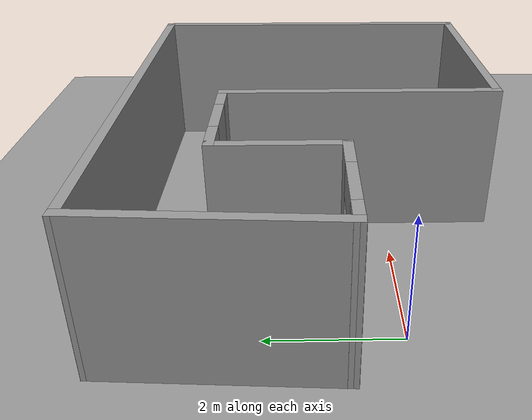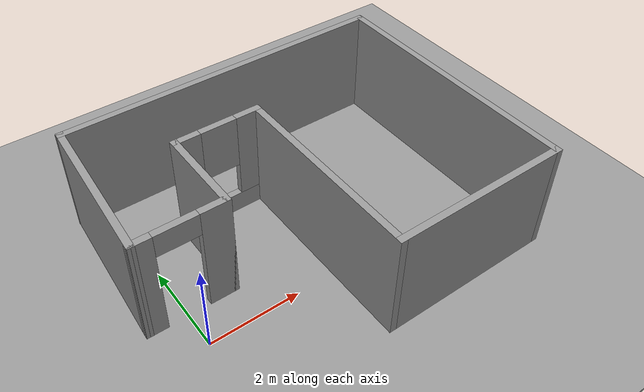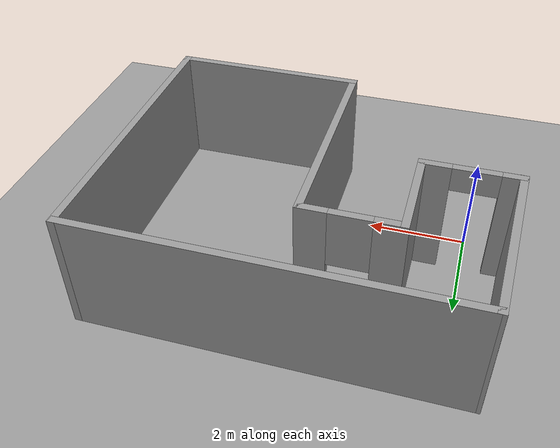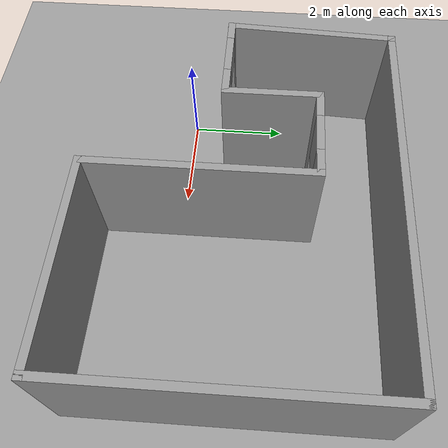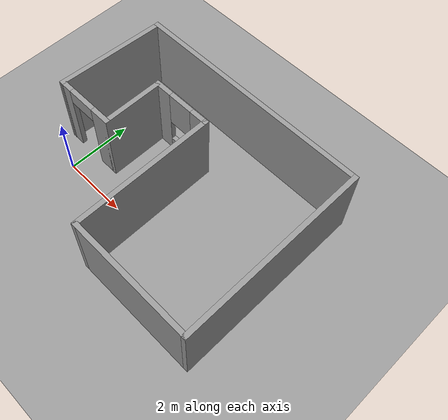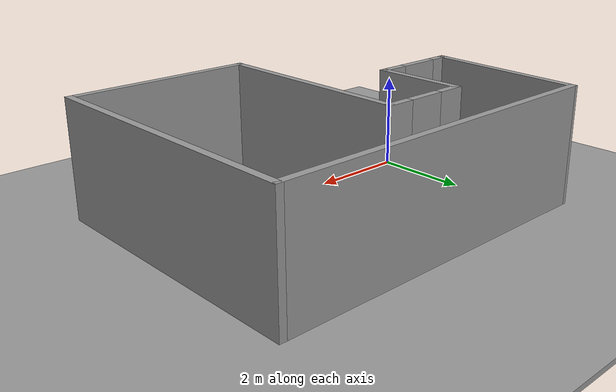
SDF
<sdf version="1.7">
 <world name="default">
  <model name="ground_plane">
   <static>1</static>
   <link name="link">
    <collision name="collision">
     <geometry><plane><normal>0 0 1</normal><size>100 100</size></plane></geometry>
     <surface>
      <contact><collide_bitmask>65535</collide_bitmask></contact>
      <friction><ode><mu>100</mu><mu2>50</mu2></ode></friction>
     </surface>
    </collision>
    <visual name="visual">
     <cast_shadows>0</cast_shadows>
     <geometry><plane><normal>0 0 1</normal><size>100 100</size></plane></geometry>
     <material>
      <script><uri>file://media/materials/scripts/gazebo.material</uri><name>Gazebo/Grey</name></script>
     </material>
    </visual>
   </link>
  </model>
  <model name="d_world">
   <pose>2.95724 1.43509 0 0 -0 0</pose>
   <link name="Wall_0">
    <pose>-2.84801 -0.627474 0 0 -0 0</pose>
    <visual name="Wall_0_Visual_0">
     <pose>-0.767956 0 1.25 0 -0 0</pose>
     <geometry><box><size>0.464088 0.15 2.5</size></box></geometry>
     <material>
      <script><uri>file://media/materials/scripts/gazebo.material</uri><name>Gazebo/Grey</name></script>
      <ambient>1 1 1 1</ambient>
     </material>
     <meta><layer>0</layer></meta>
    </visual>
    <collision name="Wall_0_Collision_0">
     <geometry><box><size>0.464088 0.15 2.5</size></box></geometry>
     <pose>-0.767956 0 1.25 0 -0 0</pose>
    </collision>
    <visual name="Wall_0_Visual_1">
     <pose>0.682044 0 1.25 0 -0 0</pose>
     <geometry><box><size>0.635912 0.15 2.5</size></box></geometry>
     <material>
      <script><uri>file://media/materials/scripts/gazebo.material</uri><name>Gazebo/Grey</name></script>
      <ambient>1 1 1 1</ambient>
     </material>
     <meta><layer>0</layer></meta>
    </visual>
    <collision name="Wall_0_Collision_1">
     <geometry><box><size>0.635912 0.15 2.5</size></box></geometry>
     <pose>0.682044 0 1.25 0 -0 0</pose>
    </collision>
    <visual name="Wall_0_Visual_2">
     <pose>-0.085912 0 2.25 0 -0 0</pose>
     <geometry><box><size>0.9 0.15 0.5</size></box></geometry>
     <material>
      <script><uri>file://media/materials/scripts/gazebo.material</uri><name>Gazebo/Grey</name></script>
      <ambient>1 1 1 1</ambient>
     </material>
     <meta><layer>0</layer></meta>
    </visual>
    <collision name="Wall_0_Collision_2">
     <geometry><box><size>0.9 0.15 0.5</size></box></geometry>
     <pose>-0.085912 0 2.25 0 -0 0</pose>
    </collision>
   </link>
   <link name="Wall_1">
    <collision name="Wall_1_Collision">
     <geometry><box><size>2 0.15 2.5</size></box></geometry>
     <pose>0 0 1.25 0 -0 0</pose>
    </collision>
    <visual name="Wall_1_Visual">
     <pose>0 0 1.25 0 -0 0</pose>
     <geometry><box><size>2 0.15 2.5</size></box></geometry>
     <material>
      <script><uri>file://media/materials/scripts/gazebo.material</uri><name>Gazebo/Grey</name></script>
      <ambient>1 1 1 1</ambient>
     </material>
     <meta><layer>0</layer></meta>
    </visual>
    <pose>-1.92301 0.297526 0 0 -0 1.5708</pose>
   </link>
   <link name="Wall_10">
    <collision name="Wall_10_Collision">
     <geometry><box><size>3.4875 0.15 2.5</size></box></geometry>
     <pose>0 0 1.25 0 -0 0</pose>
    </collision>
    <visual name="Wall_10_Visual">
     <pose>0 0 1.25 0 -0 0</pose>
     <geometry><box><size>3.4875 0.15 2.5</size></box></geometry>
     <material>
      <script><uri>file://media/materials/scripts/gazebo.material</uri><name>Gazebo/Grey</name></script>
      <ambient>1 1 1 1</ambient>
     </material>
     <meta><layer>0</layer></meta>
    </visual>
    <pose>-3.68175 1.03878 0 0 -0 -1.62551</pose>
   </link>
   <link name="Wall_2">
    <pose>-0.998006 1.22253 0 0 -0 0</pose>
    <visual name="Wall_2_Visual_0">
     <pose>-0.697258 0 1.25 0 -0 0</pose>
     <geometry><box><size>0.605485 0.15 2.5</size></box></geometry>
     <material>
      <script><uri>file://media/materials/scripts/gazebo.material</uri><name>Gazebo/Grey</name></script>
      <ambient>1 1 1 1</ambient>
     </material>
     <meta><layer>0</layer></meta>
    </visual>
    <collision name="Wall_2_Collision_0">
     <geometry><box><size>0.605485 0.15 2.5</size></box></geometry>
     <pose>-0.697258 0 1.25 0 -0 0</pose>
    </collision>
    <visual name="Wall_2_Visual_1">
     <pose>0.302742 0 0.25 0 -0 0</pose>
     <geometry><box><size>1.39451 0.15 0.5</size></box></geometry>
     <material>
      <script><uri>file://media/materials/scripts/gazebo.material</uri><name>Gazebo/Grey</name></script>
      <ambient>1 1 1 1</ambient>
     </material>
     <meta><layer>0</layer></meta>
    </visual>
    <collision name="Wall_2_Collision_1">
     <geometry><box><size>1.39451 0.15 0.5</size></box></geometry>
     <pose>0.302742 0 0.25 0 -0 0</pose>
    </collision>
    <visual name="Wall_2_Visual_2">
     <pose>0.702742 0 1.5 0 -0 0</pose>
     <geometry><box><size>0.594515 0.15 2</size></box></geometry>
     <material>
      <script><uri>file://media/materials/scripts/gazebo.material</uri><name>Gazebo/Grey</name></script>
      <ambient>1 1 1 1</ambient>
     </material>
     <meta><layer>0</layer></meta>
    </visual>
    <collision name="Wall_2_Collision_2">
     <geometry><box><size>0.594515 0.15 2</size></box></geometry>
     <pose>0.702742 0 1.5 0 -0 0</pose>
    </collision>
    <visual name="Wall_2_Visual_3">
     <pose>0.005485 0 1.9 0 -0 0</pose>
     <geometry><box><size>0.8 0.15 1.2</size></box></geometry>
     <material>
      <script><uri>file://media/materials/scripts/gazebo.material</uri><name>Gazebo/Grey</name></script>
      <ambient>1 1 1 1</ambient>
     </material>
     <meta><layer>0</layer></meta>
    </visual>
    <collision name="Wall_2_Collision_3">
     <geometry><box><size>0.8 0.15 1.2</size></box></geometry>
     <pose>0.005485 0 1.9 0 -0 0</pose>
    </collision>
   </link>
   <link name="Wall_5">
    <collision name="Wall_5_Collision">
     <geometry><box><size>4.5 0.15 2.5</size></box></geometry>
     <pose>0 0 1.25 0 -0 0</pose>
    </collision>
    <visual name="Wall_5_Visual">
     <pose>0 0 1.25 0 -0 0</pose>
     <geometry><box><size>4.5 0.15 2.5</size></box></geometry>
     <material>
      <script><uri>file://media/materials/scripts/gazebo.material</uri><name>Gazebo/Grey</name></script>
      <ambient>1 1 1 1</ambient>
     </material>
     <meta><layer>0</layer></meta>
    </visual>
    <pose>-0.073006 -0.952474 0 0 -0 -1.5708</pose>
   </link>
   <link name="Wall_6">
    <collision name="Wall_6_Collision">
     <geometry><box><size>4 0.15 2.5</size></box></geometry>
     <pose>0 0 1.25 0 -0 0</pose>
    </collision>
    <visual name="Wall_6_Visual">
     <pose>0 0 1.25 0 -0 0</pose>
     <geometry><box><size>4 0.15 2.5</size></box></geometry>
     <material>
      <script><uri>file://media/materials/scripts/gazebo.material</uri><name>Gazebo/Grey</name></script>
      <ambient>1 1 1 1</ambient>
     </material>
     <meta><layer>0</layer></meta>
    </visual>
    <pose>1.85199 -3.12747 0 0 -0 0</pose>
   </link>
   <link name="Wall_7">
    <collision name="Wall_7_Collision">
     <geometry><box><size>5.98262 0.15 2.5</size></box></geometry>
     <pose>0 0 1.25 0 -0 0</pose>
    </collision>
    <visual name="Wall_7_Visual">
     <pose>0 0 1.25 0 -0 0</pose>
     <geometry><box><size>5.98262 0.15 2.5</size></box></geometry>
     <material>
      <script><uri>file://media/materials/scripts/gazebo.material</uri><name>Gazebo/Grey</name></script>
      <ambient>1 1 1 1</ambient>
     </material>
     <meta><layer>0</layer></meta>
    </visual>
    <pose>3.77699 -0.211219 0 0 -0 1.5708</pose>
   </link>
   <link name="Wall_8">
    <collision name="Wall_8_Collision">
     <geometry><box><size>7.5 0.15 2.5</size></box></geometry>
     <pose>0 0 1.25 0 -0 0</pose>
    </collision>
    <visual name="Wall_8_Visual">
     <pose>0 0 1.25 0 -0 0</pose>
     <geometry><box><size>7.5 0.15 2.5</size></box></geometry>
     <material>
      <script><uri>file://media/materials/scripts/gazebo.material</uri><name>Gazebo/Grey</name></script>
      <ambient>1 1 1 1</ambient>
     </material>
     <meta><layer>0</layer></meta>
    </visual>
    <pose>0.084504 2.70504 0 0 -0 3.14159</pose>
   </link>
   <static>1</static>
  </model>
  <model name="ground_plane_0">
   <static>1</static>
   <link name="link">
    <collision name="collision">
     <geometry><plane><normal>0 0 1</normal><size>100 100</size></plane></geometry>
     <surface><friction><ode><mu>100</mu><mu2>50</mu2></ode></friction></surface>
    </collision>
    <visual name="visual">
     <cast_shadows>0</cast_shadows>
     <geometry><plane><normal>0 0 1</normal><size>100 100</size></plane></geometry>
     <material>
      <script><uri>file://media/materials/scripts/gazebo.material</uri><name>Gazebo/Grey</name></script>
     </material>
    </visual>
   </link>
   <pose>3.9269 1.51275 0 0 -0 0</pose>
  </model>
 </world>
</sdf>
